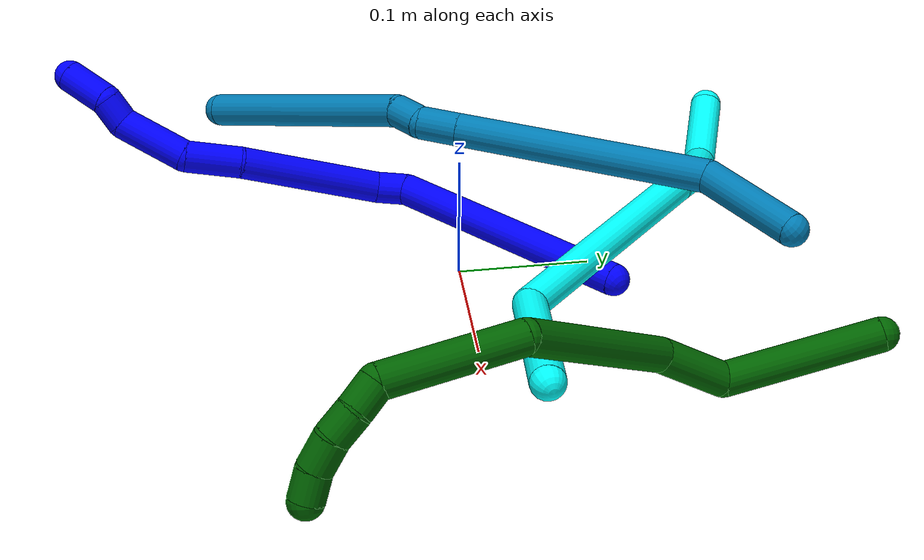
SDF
<sdf version="1.7">
 <world name="default">
  <model name="1">
   <static>0</static>
   <link name="1">
    <collision name="collision-cylinder-e_1_1_4">
     <pose>-0.025516 -0.025259 0.093465 0.26395 -0.257691 -0.034395</pose>
     <geometry><cylinder><radius>0.0125</radius><length>0.200248</length></cylinder></geometry>
     <surface>
      <friction><ode><mu>1.16</mu><mu2>1.16</mu2><slip1>0</slip1><slip2>0</slip2></ode></friction>
      <contact><ode><kp>1e+06</kp><kd>1</kd><max_vel>0</max_vel><min_depth>0.001</min_depth></ode></contact>
     </surface>
    </collision>
    <visual name="visual-cylinder-e_1_1_4">
     <pose>-0.025516 -0.025259 0.093465 0.26395 -0.257691 -0.034395</pose>
     <geometry><cylinder><radius>0.0125</radius><length>0.200248</length></cylinder></geometry>
     <material><ambient>0 0 1 1</ambient></material>
    </visual>
    <collision name="collision-cylinder-e_2_4_5">
     <pose>-0.056032 -0.058379 0.194829 0.782885 -0.421664 -0.176207</pose>
     <geometry><cylinder><radius>0.0125</radius><length>0.024427</length></cylinder></geometry>
     <surface>
      <friction><ode><mu>1.16</mu><mu2>1.16</mu2><slip1>0</slip1><slip2>0</slip2></ode></friction>
      <contact><ode><kp>1e+06</kp><kd>1</kd><max_vel>0</max_vel><min_depth>0.001</min_depth></ode></contact>
     </surface>
    </collision>
    <visual name="visual-cylinder-e_2_4_5">
     <pose>-0.056032 -0.058379 0.194829 0.782885 -0.421664 -0.176207</pose>
     <geometry><cylinder><radius>0.0125</radius><length>0.024427</length></cylinder></geometry>
     <material><ambient>0 0 1 1</ambient></material>
    </visual>
    <collision name="collision-cylinder-e_3_5_6">
     <pose>-0.067331 -0.11984 0.223192 1.2061 -0.109374 -0.075357</pose>
     <geometry><cylinder><radius>0.0125</radius><length>0.115439</length></cylinder></geometry>
     <surface>
      <friction><ode><mu>1.16</mu><mu2>1.16</mu2><slip1>0</slip1><slip2>0</slip2></ode></friction>
      <contact><ode><kp>1e+06</kp><kd>1</kd><max_vel>0</max_vel><min_depth>0.001</min_depth></ode></contact>
     </surface>
    </collision>
    <visual name="visual-cylinder-e_3_5_6">
     <pose>-0.067331 -0.11984 0.223192 1.2061 -0.109374 -0.075357</pose>
     <geometry><cylinder><radius>0.0125</radius><length>0.115439</length></cylinder></geometry>
     <material><ambient>0 0 1 1</ambient></material>
    </visual>
    <collision name="collision-cylinder-e_4_6_7">
     <pose>-0.079372 -0.191881 0.254097 1.05557 -0.26456 -0.15482</pose>
     <geometry><cylinder><radius>0.0125</radius><length>0.043909</length></cylinder></geometry>
     <surface>
      <friction><ode><mu>1.16</mu><mu2>1.16</mu2><slip1>0</slip1><slip2>0</slip2></ode></friction>
      <contact><ode><kp>1e+06</kp><kd>1</kd><max_vel>0</max_vel><min_depth>0.001</min_depth></ode></contact>
     </surface>
    </collision>
    <visual name="visual-cylinder-e_4_6_7">
     <pose>-0.079372 -0.191881 0.254097 1.05557 -0.26456 -0.15482</pose>
     <geometry><cylinder><radius>0.0125</radius><length>0.043909</length></cylinder></geometry>
     <material><ambient>0 0 1 1</ambient></material>
    </visual>
    <collision name="collision-cylinder-e_5_7_8">
     <pose>-0.086214 -0.226795 0.287335 0.625798 -0.039149 -0.012667</pose>
     <geometry><cylinder><radius>0.0125</radius><length>0.056297</length></cylinder></geometry>
     <surface>
      <friction><ode><mu>1.16</mu><mu2>1.16</mu2><slip1>0</slip1><slip2>0</slip2></ode></friction>
      <contact><ode><kp>1e+06</kp><kd>1</kd><max_vel>0</max_vel><min_depth>0.001</min_depth></ode></contact>
     </surface>
    </collision>
    <visual name="visual-cylinder-e_5_7_8">
     <pose>-0.086214 -0.226795 0.287335 0.625798 -0.039149 -0.012667</pose>
     <geometry><cylinder><radius>0.0125</radius><length>0.056297</length></cylinder></geometry>
     <material><ambient>0 0 1 1</ambient></material>
    </visual>
    <collision name="collision-cylinder-e_6_8_9">
     <pose>-0.082093 -0.249577 0.317727 0.692912 0.486672 0.178772</pose>
     <geometry><cylinder><radius>0.0125</radius><length>0.022338</length></cylinder></geometry>
     <surface>
      <friction><ode><mu>1.16</mu><mu2>1.16</mu2><slip1>0</slip1><slip2>0</slip2></ode></friction>
      <contact><ode><kp>1e+06</kp><kd>1</kd><max_vel>0</max_vel><min_depth>0.001</min_depth></ode></contact>
     </surface>
    </collision>
    <visual name="visual-cylinder-e_6_8_9">
     <pose>-0.082093 -0.249577 0.317727 0.692912 0.486672 0.178772</pose>
     <geometry><cylinder><radius>0.0125</radius><length>0.022338</length></cylinder></geometry>
     <material><ambient>0 0 1 1</ambient></material>
    </visual>
    <collision name="collision-cylinder-e_7_9_2">
     <pose>-0.077518 -0.263588 0.342317 0.425682 -0.034758 -0.007512</pose>
     <geometry><cylinder><radius>0.0125</radius><length>0.037343</length></cylinder></geometry>
     <surface>
      <friction><ode><mu>1.16</mu><mu2>1.16</mu2><slip1>0</slip1><slip2>0</slip2></ode></friction>
      <contact><ode><kp>1e+06</kp><kd>1</kd><max_vel>0</max_vel><min_depth>0.001</min_depth></ode></contact>
     </surface>
    </collision>
    <visual name="visual-cylinder-e_7_9_2">
     <pose>-0.077518 -0.263588 0.342317 0.425682 -0.034758 -0.007512</pose>
     <geometry><cylinder><radius>0.0125</radius><length>0.037343</length></cylinder></geometry>
     <material><ambient>0 0 1 1</ambient></material>
    </visual>
    <collision name="collision-sphere-2">
     <pose>-0.078167 -0.271294 0.359312 0 -0 0</pose>
     <geometry><sphere><radius>0.0125</radius></sphere></geometry>
     <surface>
      <friction><ode><mu>1.16</mu><mu2>1.16</mu2><slip1>0</slip1><slip2>0</slip2></ode></friction>
      <contact><ode><kp>1e+06</kp><kd>1</kd><max_vel>0</max_vel><min_depth>0.001</min_depth></ode></contact>
     </surface>
    </collision>
    <visual name="visual-sphere-2">
     <pose>-0.078167 -0.271294 0.359312 0 -0 0</pose>
     <geometry><sphere><radius>0.0125</radius></sphere></geometry>
     <material><ambient>0 0 1 1</ambient></material>
    </visual>
    <collision name="collision-sphere-9">
     <pose>-0.076869 -0.255883 0.325323 0 -0 0</pose>
     <geometry><sphere><radius>0.0125</radius></sphere></geometry>
     <surface>
      <friction><ode><mu>1.16</mu><mu2>1.16</mu2><slip1>0</slip1><slip2>0</slip2></ode></friction>
      <contact><ode><kp>1e+06</kp><kd>1</kd><max_vel>0</max_vel><min_depth>0.001</min_depth></ode></contact>
     </surface>
    </collision>
    <visual name="visual-sphere-9">
     <pose>-0.076869 -0.255883 0.325323 0 -0 0</pose>
     <geometry><sphere><radius>0.0125</radius></sphere></geometry>
     <material><ambient>0 0 1 1</ambient></material>
    </visual>
    <collision name="collision-sphere-4">
     <pose>-0.051033 -0.050519 0.18693 0 -0 0</pose>
     <geometry><sphere><radius>0.0125</radius></sphere></geometry>
     <surface>
      <friction><ode><mu>1.16</mu><mu2>1.16</mu2><slip1>0</slip1><slip2>0</slip2></ode></friction>
      <contact><ode><kp>1e+06</kp><kd>1</kd><max_vel>0</max_vel><min_depth>0.001</min_depth></ode></contact>
     </surface>
    </collision>
    <visual name="visual-sphere-4">
     <pose>-0.051033 -0.050519 0.18693 0 -0 0</pose>
     <geometry><sphere><radius>0.0125</radius></sphere></geometry>
     <material><ambient>0 0 1 1</ambient></material>
    </visual>
    <collision name="collision-sphere-1">
     <geometry><sphere><radius>0.0125</radius></sphere></geometry>
     <surface>
      <friction><ode><mu>1.16</mu><mu2>1.16</mu2><slip1>0</slip1><slip2>0</slip2></ode></friction>
      <contact><ode><kp>1e+06</kp><kd>1</kd><max_vel>0</max_vel><min_depth>0.001</min_depth></ode></contact>
     </surface>
    </collision>
    <visual name="visual-sphere-1">
     <geometry><sphere><radius>0.0125</radius></sphere></geometry>
     <material><ambient>0 0 1 1</ambient></material>
    </visual>
    <collision name="collision-sphere-8">
     <pose>-0.087316 -0.243271 0.310132 0 -0 0</pose>
     <geometry><sphere><radius>0.0125</radius></sphere></geometry>
     <surface>
      <friction><ode><mu>1.16</mu><mu2>1.16</mu2><slip1>0</slip1><slip2>0</slip2></ode></friction>
      <contact><ode><kp>1e+06</kp><kd>1</kd><max_vel>0</max_vel><min_depth>0.001</min_depth></ode></contact>
     </surface>
    </collision>
    <visual name="visual-sphere-8">
     <pose>-0.087316 -0.243271 0.310132 0 -0 0</pose>
     <geometry><sphere><radius>0.0125</radius></sphere></geometry>
     <material><ambient>0 0 1 1</ambient></material>
    </visual>
    <collision name="collision-sphere-5">
     <pose>-0.06103 -0.066239 0.202729 0 -0 0</pose>
     <geometry><sphere><radius>0.0125</radius></sphere></geometry>
     <surface>
      <friction><ode><mu>1.16</mu><mu2>1.16</mu2><slip1>0</slip1><slip2>0</slip2></ode></friction>
      <contact><ode><kp>1e+06</kp><kd>1</kd><max_vel>0</max_vel><min_depth>0.001</min_depth></ode></contact>
     </surface>
    </collision>
    <visual name="visual-sphere-5">
     <pose>-0.06103 -0.066239 0.202729 0 -0 0</pose>
     <geometry><sphere><radius>0.0125</radius></sphere></geometry>
     <material><ambient>0 0 1 1</ambient></material>
    </visual>
    <collision name="collision-sphere-6">
     <pose>-0.073631 -0.173441 0.243655 0 -0 0</pose>
     <geometry><sphere><radius>0.0125</radius></sphere></geometry>
     <surface>
      <friction><ode><mu>1.16</mu><mu2>1.16</mu2><slip1>0</slip1><slip2>0</slip2></ode></friction>
      <contact><ode><kp>1e+06</kp><kd>1</kd><max_vel>0</max_vel><min_depth>0.001</min_depth></ode></contact>
     </surface>
    </collision>
    <visual name="visual-sphere-6">
     <pose>-0.073631 -0.173441 0.243655 0 -0 0</pose>
     <geometry><sphere><radius>0.0125</radius></sphere></geometry>
     <material><ambient>0 0 1 1</ambient></material>
    </visual>
    <collision name="collision-sphere-7">
     <pose>-0.085113 -0.21032 0.264538 0 -0 0</pose>
     <geometry><sphere><radius>0.0125</radius></sphere></geometry>
     <surface>
      <friction><ode><mu>1.16</mu><mu2>1.16</mu2><slip1>0</slip1><slip2>0</slip2></ode></friction>
      <contact><ode><kp>1e+06</kp><kd>1</kd><max_vel>0</max_vel><min_depth>0.001</min_depth></ode></contact>
     </surface>
    </collision>
    <visual name="visual-sphere-7">
     <pose>-0.085113 -0.21032 0.264538 0 -0 0</pose>
     <geometry><sphere><radius>0.0125</radius></sphere></geometry>
     <material><ambient>0 0 1 1</ambient></material>
    </visual>
    <inertial>
     <pose>-0.054636 -0.113859 0.192908 0 -0 0</pose>
     <mass>0.5</mass>
     <inertia>
      <ixx>0.00078</ixx>
      <ixy>0</ixy>
      <ixz>0</ixz>
      <iyy>0.000674</iyy>
      <iyz>0</iyz>
      <izz>0.000534</izz>
     </inertia>
    </inertial>
   </link>
   <pose>0.042143 0.111805 0.012053 -1.28609 -1.10614 1.75072</pose>
  </model>
  <model name="3">
   <static>0</static>
   <link name="3">
    <collision name="collision-cylinder-e_1_1_4">
     <pose>-0.019521 0.005413 0.056515 -0.095485 -0.331172 0.015969</pose>
     <geometry><cylinder><radius>0.0125</radius><length>0.120072</length></cylinder></geometry>
     <surface>
      <friction><ode><mu>1.16</mu><mu2>1.16</mu2><slip1>0</slip1><slip2>0</slip2></ode></friction>
      <contact><ode><kp>1e+06</kp><kd>1</kd><max_vel>0</max_vel><min_depth>0.001</min_depth></ode></contact>
     </surface>
    </collision>
    <visual name="visual-cylinder-e_1_1_4">
     <pose>-0.019521 0.005413 0.056515 -0.095485 -0.331172 0.015969</pose>
     <geometry><cylinder><radius>0.0125</radius><length>0.120072</length></cylinder></geometry>
     <material><ambient>0.003922 1 0.996078 1</ambient></material>
    </visual>
    <collision name="collision-cylinder-e_2_4_5">
     <pose>-0.080715 0.078914 0.170347 -0.871089 -0.437916 0.206368</pose>
     <geometry><cylinder><radius>0.0125</radius><length>0.19655</length></cylinder></geometry>
     <surface>
      <friction><ode><mu>1.16</mu><mu2>1.16</mu2><slip1>0</slip1><slip2>0</slip2></ode></friction>
      <contact><ode><kp>1e+06</kp><kd>1</kd><max_vel>0</max_vel><min_depth>0.001</min_depth></ode></contact>
     </surface>
    </collision>
    <visual name="visual-cylinder-e_2_4_5">
     <pose>-0.080715 0.078914 0.170347 -0.871089 -0.437916 0.206368</pose>
     <geometry><cylinder><radius>0.0125</radius><length>0.19655</length></cylinder></geometry>
     <material><ambient>0.003922 1 0.996078 1</ambient></material>
    </visual>
    <collision name="collision-cylinder-e_3_5_6">
     <pose>-0.145326 0.157636 0.253656 -0.388298 -0.684856 0.139954</pose>
     <geometry><cylinder><radius>0.0125</radius><length>0.072519</length></cylinder></geometry>
     <surface>
      <friction><ode><mu>1.16</mu><mu2>1.16</mu2><slip1>0</slip1><slip2>0</slip2></ode></friction>
      <contact><ode><kp>1e+06</kp><kd>1</kd><max_vel>0</max_vel><min_depth>0.001</min_depth></ode></contact>
     </surface>
    </collision>
    <visual name="visual-cylinder-e_3_5_6">
     <pose>-0.145326 0.157636 0.253656 -0.388298 -0.684856 0.139954</pose>
     <geometry><cylinder><radius>0.0125</radius><length>0.072519</length></cylinder></geometry>
     <material><ambient>0.003922 1 0.996078 1</ambient></material>
    </visual>
    <collision name="collision-cylinder-e_4_6_7">
     <pose>-0.180811 0.173369 0.297982 -0.271329 -0.582999 0.081869</pose>
     <geometry><cylinder><radius>0.0125</radius><length>0.045588</length></cylinder></geometry>
     <surface>
      <friction><ode><mu>1.16</mu><mu2>1.16</mu2><slip1>0</slip1><slip2>0</slip2></ode></friction>
      <contact><ode><kp>1e+06</kp><kd>1</kd><max_vel>0</max_vel><min_depth>0.001</min_depth></ode></contact>
     </surface>
    </collision>
    <visual name="visual-cylinder-e_4_6_7">
     <pose>-0.180811 0.173369 0.297982 -0.271329 -0.582999 0.081869</pose>
     <geometry><cylinder><radius>0.0125</radius><length>0.045588</length></cylinder></geometry>
     <material><ambient>0.003922 1 0.996078 1</ambient></material>
    </visual>
    <collision name="collision-cylinder-e_5_7_2">
     <pose>-0.193212 0.194954 0.34448 -0.529539 0.004545 -0.001232</pose>
     <geometry><cylinder><radius>0.0125</radius><length>0.06527</length></cylinder></geometry>
     <surface>
      <friction><ode><mu>1.16</mu><mu2>1.16</mu2><slip1>0</slip1><slip2>0</slip2></ode></friction>
      <contact><ode><kp>1e+06</kp><kd>1</kd><max_vel>0</max_vel><min_depth>0.001</min_depth></ode></contact>
     </surface>
    </collision>
    <visual name="visual-cylinder-e_5_7_2">
     <pose>-0.193212 0.194954 0.34448 -0.529539 0.004545 -0.001232</pose>
     <geometry><cylinder><radius>0.0125</radius><length>0.06527</length></cylinder></geometry>
     <material><ambient>0.003922 1 0.996078 1</ambient></material>
    </visual>
    <collision name="collision-sphere-2">
     <pose>-0.193063 0.211439 0.372645 0 -0 0</pose>
     <geometry><sphere><radius>0.0125</radius></sphere></geometry>
     <surface>
      <friction><ode><mu>1.16</mu><mu2>1.16</mu2><slip1>0</slip1><slip2>0</slip2></ode></friction>
      <contact><ode><kp>1e+06</kp><kd>1</kd><max_vel>0</max_vel><min_depth>0.001</min_depth></ode></contact>
     </surface>
    </collision>
    <visual name="visual-sphere-2">
     <pose>-0.193063 0.211439 0.372645 0 -0 0</pose>
     <geometry><sphere><radius>0.0125</radius></sphere></geometry>
     <material><ambient>0.003922 1 0.996078 1</ambient></material>
    </visual>
    <collision name="collision-sphere-7">
     <pose>-0.19336 0.178469 0.316315 0 -0 0</pose>
     <geometry><sphere><radius>0.0125</radius></sphere></geometry>
     <surface>
      <friction><ode><mu>1.16</mu><mu2>1.16</mu2><slip1>0</slip1><slip2>0</slip2></ode></friction>
      <contact><ode><kp>1e+06</kp><kd>1</kd><max_vel>0</max_vel><min_depth>0.001</min_depth></ode></contact>
     </surface>
    </collision>
    <visual name="visual-sphere-7">
     <pose>-0.19336 0.178469 0.316315 0 -0 0</pose>
     <geometry><sphere><radius>0.0125</radius></sphere></geometry>
     <material><ambient>0.003922 1 0.996078 1</ambient></material>
    </visual>
    <collision name="collision-sphere-6">
     <pose>-0.168262 0.168269 0.279649 0 -0 0</pose>
     <geometry><sphere><radius>0.0125</radius></sphere></geometry>
     <surface>
      <friction><ode><mu>1.16</mu><mu2>1.16</mu2><slip1>0</slip1><slip2>0</slip2></ode></friction>
      <contact><ode><kp>1e+06</kp><kd>1</kd><max_vel>0</max_vel><min_depth>0.001</min_depth></ode></contact>
     </surface>
    </collision>
    <visual name="visual-sphere-6">
     <pose>-0.168262 0.168269 0.279649 0 -0 0</pose>
     <geometry><sphere><radius>0.0125</radius></sphere></geometry>
     <material><ambient>0.003922 1 0.996078 1</ambient></material>
    </visual>
    <collision name="collision-sphere-5">
     <pose>-0.122389 0.147003 0.227663 0 -0 0</pose>
     <geometry><sphere><radius>0.0125</radius></sphere></geometry>
     <surface>
      <friction><ode><mu>1.16</mu><mu2>1.16</mu2><slip1>0</slip1><slip2>0</slip2></ode></friction>
      <contact><ode><kp>1e+06</kp><kd>1</kd><max_vel>0</max_vel><min_depth>0.001</min_depth></ode></contact>
     </surface>
    </collision>
    <visual name="visual-sphere-5">
     <pose>-0.122389 0.147003 0.227663 0 -0 0</pose>
     <geometry><sphere><radius>0.0125</radius></sphere></geometry>
     <material><ambient>0.003922 1 0.996078 1</ambient></material>
    </visual>
    <collision name="collision-sphere-1">
     <geometry><sphere><radius>0.0125</radius></sphere></geometry>
     <surface>
      <friction><ode><mu>1.16</mu><mu2>1.16</mu2><slip1>0</slip1><slip2>0</slip2></ode></friction>
      <contact><ode><kp>1e+06</kp><kd>1</kd><max_vel>0</max_vel><min_depth>0.001</min_depth></ode></contact>
     </surface>
    </collision>
    <visual name="visual-sphere-1">
     <geometry><sphere><radius>0.0125</radius></sphere></geometry>
     <material><ambient>0.003922 1 0.996078 1</ambient></material>
    </visual>
    <collision name="collision-sphere-4">
     <pose>-0.039042 0.010826 0.113031 0 -0 0</pose>
     <geometry><sphere><radius>0.0125</radius></sphere></geometry>
     <surface>
      <friction><ode><mu>1.16</mu><mu2>1.16</mu2><slip1>0</slip1><slip2>0</slip2></ode></friction>
      <contact><ode><kp>1e+06</kp><kd>1</kd><max_vel>0</max_vel><min_depth>0.001</min_depth></ode></contact>
     </surface>
    </collision>
    <visual name="visual-sphere-4">
     <pose>-0.039042 0.010826 0.113031 0 -0 0</pose>
     <geometry><sphere><radius>0.0125</radius></sphere></geometry>
     <material><ambient>0.003922 1 0.996078 1</ambient></material>
    </visual>
    <inertial>
     <pose>-0.099203 0.096441 0.189463 0 -0 0</pose>
     <mass>0.5</mass>
     <inertia>
      <ixx>0.000879</ixx>
      <ixy>0</ixy>
      <ixz>0</ixz>
      <iyy>0.000801</iyy>
      <iyz>0</iyz>
      <izz>-0.000106</izz>
     </inertia>
    </inertial>
   </link>
   <pose>0.247465 0.022883 0.090828 1.52263 -1.07782 -1.35956</pose>
  </model>
  <model name="6">
   <static>0</static>
   <link name="6">
    <collision name="collision-cylinder-e_1_1_4">
     <pose>0.011571 -0.055033 0.011023 1.37312 0.203318 0.166822</pose>
     <geometry><cylinder><radius>0.0125</radius><length>0.114614</length></cylinder></geometry>
     <surface>
      <friction><ode><mu>1.16</mu><mu2>1.16</mu2><slip1>0</slip1><slip2>0</slip2></ode></friction>
      <contact><ode><kp>1e+06</kp><kd>1</kd><max_vel>0</max_vel><min_depth>0.001</min_depth></ode></contact>
     </surface>
    </collision>
    <visual name="visual-cylinder-e_1_1_4">
     <pose>0.011571 -0.055033 0.011023 1.37312 0.203318 0.166822</pose>
     <geometry><cylinder><radius>0.0125</radius><length>0.114614</length></cylinder></geometry>
     <material><ambient>0 0.392157 0.003922 1</ambient></material>
    </visual>
    <collision name="collision-cylinder-e_2_4_5">
     <pose>0.016259 -0.134117 0.010731 2.01052 -0.253431 -0.396186</pose>
     <geometry><cylinder><radius>0.0125</radius><length>0.054911</length></cylinder></geometry>
     <surface>
      <friction><ode><mu>1.16</mu><mu2>1.16</mu2><slip1>0</slip1><slip2>0</slip2></ode></friction>
      <contact><ode><kp>1e+06</kp><kd>1</kd><max_vel>0</max_vel><min_depth>0.001</min_depth></ode></contact>
     </surface>
    </collision>
    <visual name="visual-cylinder-e_2_4_5">
     <pose>0.016259 -0.134117 0.010731 2.01052 -0.253431 -0.396186</pose>
     <geometry><cylinder><radius>0.0125</radius><length>0.054911</length></cylinder></geometry>
     <material><ambient>0 0.392157 0.003922 1</ambient></material>
    </visual>
    <collision name="collision-cylinder-e_3_5_6">
     <pose>-0.031429 -0.214231 -0.013438 1.79619 -0.617007 -0.76104</pose>
     <geometry><cylinder><radius>0.0125</radius><length>0.141045</length></cylinder></geometry>
     <surface>
      <friction><ode><mu>1.16</mu><mu2>1.16</mu2><slip1>0</slip1><slip2>0</slip2></ode></friction>
      <contact><ode><kp>1e+06</kp><kd>1</kd><max_vel>0</max_vel><min_depth>0.001</min_depth></ode></contact>
     </surface>
    </collision>
    <visual name="visual-cylinder-e_3_5_6">
     <pose>-0.031429 -0.214231 -0.013438 1.79619 -0.617007 -0.76104</pose>
     <geometry><cylinder><radius>0.0125</radius><length>0.141045</length></cylinder></geometry>
     <material><ambient>0 0.392157 0.003922 1</ambient></material>
    </visual>
    <collision name="collision-cylinder-e_4_6_7">
     <pose>-0.077697 -0.320078 -0.017257 1.39124 -0.107567 -0.089826</pose>
     <geometry><cylinder><radius>0.0125</radius><length>0.101778</length></cylinder></geometry>
     <surface>
      <friction><ode><mu>1.16</mu><mu2>1.16</mu2><slip1>0</slip1><slip2>0</slip2></ode></friction>
      <contact><ode><kp>1e+06</kp><kd>1</kd><max_vel>0</max_vel><min_depth>0.001</min_depth></ode></contact>
     </surface>
    </collision>
    <visual name="visual-cylinder-e_4_6_7">
     <pose>-0.077697 -0.320078 -0.017257 1.39124 -0.107567 -0.089826</pose>
     <geometry><cylinder><radius>0.0125</radius><length>0.101778</length></cylinder></geometry>
     <material><ambient>0 0.392157 0.003922 1</ambient></material>
    </visual>
    <collision name="collision-cylinder-e_5_7_8">
     <pose>-0.083337 -0.377295 -0.000167 0.74556 -0.016159 -0.006319</pose>
     <geometry><cylinder><radius>0.0125</radius><length>0.021926</length></cylinder></geometry>
     <surface>
      <friction><ode><mu>1.16</mu><mu2>1.16</mu2><slip1>0</slip1><slip2>0</slip2></ode></friction>
      <contact><ode><kp>1e+06</kp><kd>1</kd><max_vel>0</max_vel><min_depth>0.001</min_depth></ode></contact>
     </surface>
    </collision>
    <visual name="visual-cylinder-e_5_7_8">
     <pose>-0.083337 -0.377295 -0.000167 0.74556 -0.016159 -0.006319</pose>
     <geometry><cylinder><radius>0.0125</radius><length>0.021926</length></cylinder></geometry>
     <material><ambient>0 0.392157 0.003922 1</ambient></material>
    </visual>
    <collision name="collision-cylinder-e_6_8_9">
     <pose>-0.081582 -0.392104 0.015605 0.762462 0.179169 0.07198</pose>
     <geometry><cylinder><radius>0.0125</radius><length>0.021694</length></cylinder></geometry>
     <surface>
      <friction><ode><mu>1.16</mu><mu2>1.16</mu2><slip1>0</slip1><slip2>0</slip2></ode></friction>
      <contact><ode><kp>1e+06</kp><kd>1</kd><max_vel>0</max_vel><min_depth>0.001</min_depth></ode></contact>
     </surface>
    </collision>
    <visual name="visual-cylinder-e_6_8_9">
     <pose>-0.081582 -0.392104 0.015605 0.762462 0.179169 0.07198</pose>
     <geometry><cylinder><radius>0.0125</radius><length>0.021694</length></cylinder></geometry>
     <material><ambient>0 0.392157 0.003922 1</ambient></material>
    </visual>
    <collision name="collision-cylinder-e_7_9_10">
     <pose>-0.076393 -0.405376 0.032797 0.556985 0.283851 0.081663</pose>
     <geometry><cylinder><radius>0.0125</radius><length>0.023251</length></cylinder></geometry>
     <surface>
      <friction><ode><mu>1.16</mu><mu2>1.16</mu2><slip1>0</slip1><slip2>0</slip2></ode></friction>
      <contact><ode><kp>1e+06</kp><kd>1</kd><max_vel>0</max_vel><min_depth>0.001</min_depth></ode></contact>
     </surface>
    </collision>
    <visual name="visual-cylinder-e_7_9_10">
     <pose>-0.076393 -0.405376 0.032797 0.556985 0.283851 0.081663</pose>
     <geometry><cylinder><radius>0.0125</radius><length>0.023251</length></cylinder></geometry>
     <material><ambient>0 0.392157 0.003922 1</ambient></material>
    </visual>
    <collision name="collision-cylinder-e_8_10_2">
     <pose>-0.070854 -0.414401 0.051913 0.313465 0.221511 0.035145</pose>
     <geometry><cylinder><radius>0.0125</radius><length>0.02078</length></cylinder></geometry>
     <surface>
      <friction><ode><mu>1.16</mu><mu2>1.16</mu2><slip1>0</slip1><slip2>0</slip2></ode></friction>
      <contact><ode><kp>1e+06</kp><kd>1</kd><max_vel>0</max_vel><min_depth>0.001</min_depth></ode></contact>
     </surface>
    </collision>
    <visual name="visual-cylinder-e_8_10_2">
     <pose>-0.070854 -0.414401 0.051913 0.313465 0.221511 0.035145</pose>
     <geometry><cylinder><radius>0.0125</radius><length>0.02078</length></cylinder></geometry>
     <material><ambient>0 0.392157 0.003922 1</ambient></material>
    </visual>
    <collision name="collision-sphere-2">
     <pose>-0.068571 -0.417526 0.061555 0 -0 0</pose>
     <geometry><sphere><radius>0.0125</radius></sphere></geometry>
     <surface>
      <friction><ode><mu>1.16</mu><mu2>1.16</mu2><slip1>0</slip1><slip2>0</slip2></ode></friction>
      <contact><ode><kp>1e+06</kp><kd>1</kd><max_vel>0</max_vel><min_depth>0.001</min_depth></ode></contact>
     </surface>
    </collision>
    <visual name="visual-sphere-2">
     <pose>-0.068571 -0.417526 0.061555 0 -0 0</pose>
     <geometry><sphere><radius>0.0125</radius></sphere></geometry>
     <material><ambient>0 0.392157 0.003922 1</ambient></material>
    </visual>
    <collision name="collision-sphere-10">
     <pose>-0.073137 -0.411275 0.042271 0 -0 0</pose>
     <geometry><sphere><radius>0.0125</radius></sphere></geometry>
     <surface>
      <friction><ode><mu>1.16</mu><mu2>1.16</mu2><slip1>0</slip1><slip2>0</slip2></ode></friction>
      <contact><ode><kp>1e+06</kp><kd>1</kd><max_vel>0</max_vel><min_depth>0.001</min_depth></ode></contact>
     </surface>
    </collision>
    <visual name="visual-sphere-10">
     <pose>-0.073137 -0.411275 0.042271 0 -0 0</pose>
     <geometry><sphere><radius>0.0125</radius></sphere></geometry>
     <material><ambient>0 0.392157 0.003922 1</ambient></material>
    </visual>
    <collision name="collision-sphere-9">
     <pose>-0.079648 -0.399476 0.023323 0 -0 0</pose>
     <geometry><sphere><radius>0.0125</radius></sphere></geometry>
     <surface>
      <friction><ode><mu>1.16</mu><mu2>1.16</mu2><slip1>0</slip1><slip2>0</slip2></ode></friction>
      <contact><ode><kp>1e+06</kp><kd>1</kd><max_vel>0</max_vel><min_depth>0.001</min_depth></ode></contact>
     </surface>
    </collision>
    <visual name="visual-sphere-9">
     <pose>-0.079648 -0.399476 0.023323 0 -0 0</pose>
     <geometry><sphere><radius>0.0125</radius></sphere></geometry>
     <material><ambient>0 0.392157 0.003922 1</ambient></material>
    </visual>
    <collision name="collision-sphere-4">
     <pose>0.023143 -0.110067 0.022045 0 -0 0</pose>
     <geometry><sphere><radius>0.0125</radius></sphere></geometry>
     <surface>
      <friction><ode><mu>1.16</mu><mu2>1.16</mu2><slip1>0</slip1><slip2>0</slip2></ode></friction>
      <contact><ode><kp>1e+06</kp><kd>1</kd><max_vel>0</max_vel><min_depth>0.001</min_depth></ode></contact>
     </surface>
    </collision>
    <visual name="visual-sphere-4">
     <pose>0.023143 -0.110067 0.022045 0 -0 0</pose>
     <geometry><sphere><radius>0.0125</radius></sphere></geometry>
     <material><ambient>0 0.392157 0.003922 1</ambient></material>
    </visual>
    <collision name="collision-sphere-1">
     <geometry><sphere><radius>0.0125</radius></sphere></geometry>
     <surface>
      <friction><ode><mu>1.16</mu><mu2>1.16</mu2><slip1>0</slip1><slip2>0</slip2></ode></friction>
      <contact><ode><kp>1e+06</kp><kd>1</kd><max_vel>0</max_vel><min_depth>0.001</min_depth></ode></contact>
     </surface>
    </collision>
    <visual name="visual-sphere-1">
     <geometry><sphere><radius>0.0125</radius></sphere></geometry>
     <material><ambient>0 0.392157 0.003922 1</ambient></material>
    </visual>
    <collision name="collision-sphere-8">
     <pose>-0.083515 -0.384732 0.007887 0 -0 0</pose>
     <geometry><sphere><radius>0.0125</radius></sphere></geometry>
     <surface>
      <friction><ode><mu>1.16</mu><mu2>1.16</mu2><slip1>0</slip1><slip2>0</slip2></ode></friction>
      <contact><ode><kp>1e+06</kp><kd>1</kd><max_vel>0</max_vel><min_depth>0.001</min_depth></ode></contact>
     </surface>
    </collision>
    <visual name="visual-sphere-8">
     <pose>-0.083515 -0.384732 0.007887 0 -0 0</pose>
     <geometry><sphere><radius>0.0125</radius></sphere></geometry>
     <material><ambient>0 0.392157 0.003922 1</ambient></material>
    </visual>
    <collision name="collision-sphere-5">
     <pose>0.009375 -0.158167 -0.000583 0 -0 0</pose>
     <geometry><sphere><radius>0.0125</radius></sphere></geometry>
     <surface>
      <friction><ode><mu>1.16</mu><mu2>1.16</mu2><slip1>0</slip1><slip2>0</slip2></ode></friction>
      <contact><ode><kp>1e+06</kp><kd>1</kd><max_vel>0</max_vel><min_depth>0.001</min_depth></ode></contact>
     </surface>
    </collision>
    <visual name="visual-sphere-5">
     <pose>0.009375 -0.158167 -0.000583 0 -0 0</pose>
     <geometry><sphere><radius>0.0125</radius></sphere></geometry>
     <material><ambient>0 0.392157 0.003922 1</ambient></material>
    </visual>
    <collision name="collision-sphere-6">
     <pose>-0.072233 -0.270296 -0.026293 0 -0 0</pose>
     <geometry><sphere><radius>0.0125</radius></sphere></geometry>
     <surface>
      <friction><ode><mu>1.16</mu><mu2>1.16</mu2><slip1>0</slip1><slip2>0</slip2></ode></friction>
      <contact><ode><kp>1e+06</kp><kd>1</kd><max_vel>0</max_vel><min_depth>0.001</min_depth></ode></contact>
     </surface>
    </collision>
    <visual name="visual-sphere-6">
     <pose>-0.072233 -0.270296 -0.026293 0 -0 0</pose>
     <geometry><sphere><radius>0.0125</radius></sphere></geometry>
     <material><ambient>0 0.392157 0.003922 1</ambient></material>
    </visual>
    <collision name="collision-sphere-7">
     <pose>-0.08316 -0.369859 -0.00822 0 -0 0</pose>
     <geometry><sphere><radius>0.0125</radius></sphere></geometry>
     <surface>
      <friction><ode><mu>1.16</mu><mu2>1.16</mu2><slip1>0</slip1><slip2>0</slip2></ode></friction>
      <contact><ode><kp>1e+06</kp><kd>1</kd><max_vel>0</max_vel><min_depth>0.001</min_depth></ode></contact>
     </surface>
    </collision>
    <visual name="visual-sphere-7">
     <pose>-0.08316 -0.369859 -0.00822 0 -0 0</pose>
     <geometry><sphere><radius>0.0125</radius></sphere></geometry>
     <material><ambient>0 0.392157 0.003922 1</ambient></material>
    </visual>
    <inertial>
     <pose>-0.033935 -0.222562 0.000754 0 -0 0</pose>
     <mass>0.5</mass>
     <inertia>
      <ixx>0.000246</ixx>
      <ixy>0</ixy>
      <ixz>0</ixz>
      <iyy>-5.8e-05</iyy>
      <iyz>0</iyz>
      <izz>0.000552</izz>
     </inertia>
    </inertial>
   </link>
   <pose>0.180687 0.27113 0.051213 -3.08334 0.620824 -3.02872</pose>
  </model>
  <model name="9">
   <static>0</static>
   <link name="9">
    <collision name="collision-cylinder-e_1_1_4">
     <pose>-0.014987 -0.03145 -0.020593 2.15054 -0.379371 -0.682619</pose>
     <geometry><cylinder><radius>0.0125</radius><length>0.080939</length></cylinder></geometry>
     <surface>
      <friction><ode><mu>1.16</mu><mu2>1.16</mu2><slip1>0</slip1><slip2>0</slip2></ode></friction>
      <contact><ode><kp>1e+06</kp><kd>1</kd><max_vel>0</max_vel><min_depth>0.001</min_depth></ode></contact>
     </surface>
    </collision>
    <visual name="visual-cylinder-e_1_1_4">
     <pose>-0.014987 -0.03145 -0.020593 2.15054 -0.379371 -0.682619</pose>
     <geometry><cylinder><radius>0.0125</radius><length>0.080939</length></cylinder></geometry>
     <material><ambient>0 0.490196 0.709804 1</ambient></material>
    </visual>
    <collision name="collision-cylinder-e_2_4_5">
     <pose>-0.092921 -0.095705 -0.104259 2.66197 -0.72469 -1.99585</pose>
     <geometry><cylinder><radius>0.0125</radius><length>0.18991</length></cylinder></geometry>
     <surface>
      <friction><ode><mu>1.16</mu><mu2>1.16</mu2><slip1>0</slip1><slip2>0</slip2></ode></friction>
      <contact><ode><kp>1e+06</kp><kd>1</kd><max_vel>0</max_vel><min_depth>0.001</min_depth></ode></contact>
     </surface>
    </collision>
    <visual name="visual-cylinder-e_2_4_5">
     <pose>-0.092921 -0.095705 -0.104259 2.66197 -0.72469 -1.99585</pose>
     <geometry><cylinder><radius>0.0125</radius><length>0.18991</length></cylinder></geometry>
     <material><ambient>0 0.490196 0.709804 1</ambient></material>
    </visual>
    <collision name="collision-cylinder-e_3_5_6">
     <pose>-0.165863 -0.133752 -0.177374 2.66062 -0.722947 -1.99079</pose>
     <geometry><cylinder><radius>0.0125</radius><length>0.030217</length></cylinder></geometry>
     <surface>
      <friction><ode><mu>1.16</mu><mu2>1.16</mu2><slip1>0</slip1><slip2>0</slip2></ode></friction>
      <contact><ode><kp>1e+06</kp><kd>1</kd><max_vel>0</max_vel><min_depth>0.001</min_depth></ode></contact>
     </surface>
    </collision>
    <visual name="visual-cylinder-e_3_5_6">
     <pose>-0.165863 -0.133752 -0.177374 2.66062 -0.722947 -1.99079</pose>
     <geometry><cylinder><radius>0.0125</radius><length>0.030217</length></cylinder></geometry>
     <material><ambient>0 0.490196 0.709804 1</ambient></material>
    </visual>
    <collision name="collision-cylinder-e_4_6_7">
     <pose>-0.181714 -0.148173 -0.193747 2.17441 -0.483578 -0.878027</pose>
     <geometry><cylinder><radius>0.0125</radius><length>0.025188</length></cylinder></geometry>
     <surface>
      <friction><ode><mu>1.16</mu><mu2>1.16</mu2><slip1>0</slip1><slip2>0</slip2></ode></friction>
      <contact><ode><kp>1e+06</kp><kd>1</kd><max_vel>0</max_vel><min_depth>0.001</min_depth></ode></contact>
     </surface>
    </collision>
    <visual name="visual-cylinder-e_4_6_7">
     <pose>-0.181714 -0.148173 -0.193747 2.17441 -0.483578 -0.878027</pose>
     <geometry><cylinder><radius>0.0125</radius><length>0.025188</length></cylinder></geometry>
     <material><ambient>0 0.490196 0.709804 1</ambient></material>
    </visual>
    <collision name="collision-cylinder-e_5_7_2">
     <pose>-0.253687 -0.203046 -0.233054 2.19596 -0.864977 -1.46838</pose>
     <geometry><cylinder><radius>0.0125</radius><length>0.173745</length></cylinder></geometry>
     <surface>
      <friction><ode><mu>1.16</mu><mu2>1.16</mu2><slip1>0</slip1><slip2>0</slip2></ode></friction>
      <contact><ode><kp>1e+06</kp><kd>1</kd><max_vel>0</max_vel><min_depth>0.001</min_depth></ode></contact>
     </surface>
    </collision>
    <visual name="visual-cylinder-e_5_7_2">
     <pose>-0.253687 -0.203046 -0.233054 2.19596 -0.864977 -1.46838</pose>
     <geometry><cylinder><radius>0.0125</radius><length>0.173745</length></cylinder></geometry>
     <material><ambient>0 0.490196 0.709804 1</ambient></material>
    </visual>
    <collision name="collision-sphere-2">
     <pose>-0.319804 -0.248739 -0.266032 0 -0 0</pose>
     <geometry><sphere><radius>0.0125</radius></sphere></geometry>
     <surface>
      <friction><ode><mu>1.16</mu><mu2>1.16</mu2><slip1>0</slip1><slip2>0</slip2></ode></friction>
      <contact><ode><kp>1e+06</kp><kd>1</kd><max_vel>0</max_vel><min_depth>0.001</min_depth></ode></contact>
     </surface>
    </collision>
    <visual name="visual-sphere-2">
     <pose>-0.319804 -0.248739 -0.266032 0 -0 0</pose>
     <geometry><sphere><radius>0.0125</radius></sphere></geometry>
     <material><ambient>0 0.490196 0.709804 1</ambient></material>
    </visual>
    <collision name="collision-sphere-7">
     <pose>-0.18757 -0.157353 -0.200076 0 -0 0</pose>
     <geometry><sphere><radius>0.0125</radius></sphere></geometry>
     <surface>
      <friction><ode><mu>1.16</mu><mu2>1.16</mu2><slip1>0</slip1><slip2>0</slip2></ode></friction>
      <contact><ode><kp>1e+06</kp><kd>1</kd><max_vel>0</max_vel><min_depth>0.001</min_depth></ode></contact>
     </surface>
    </collision>
    <visual name="visual-sphere-7">
     <pose>-0.18757 -0.157353 -0.200076 0 -0 0</pose>
     <geometry><sphere><radius>0.0125</radius></sphere></geometry>
     <material><ambient>0 0.490196 0.709804 1</ambient></material>
    </visual>
    <collision name="collision-sphere-6">
     <pose>-0.175858 -0.138994 -0.187418 0 -0 0</pose>
     <geometry><sphere><radius>0.0125</radius></sphere></geometry>
     <surface>
      <friction><ode><mu>1.16</mu><mu2>1.16</mu2><slip1>0</slip1><slip2>0</slip2></ode></friction>
      <contact><ode><kp>1e+06</kp><kd>1</kd><max_vel>0</max_vel><min_depth>0.001</min_depth></ode></contact>
     </surface>
    </collision>
    <visual name="visual-sphere-6">
     <pose>-0.175858 -0.138994 -0.187418 0 -0 0</pose>
     <geometry><sphere><radius>0.0125</radius></sphere></geometry>
     <material><ambient>0 0.490196 0.709804 1</ambient></material>
    </visual>
    <collision name="collision-sphere-5">
     <pose>-0.155867 -0.128511 -0.167331 0 -0 0</pose>
     <geometry><sphere><radius>0.0125</radius></sphere></geometry>
     <surface>
      <friction><ode><mu>1.16</mu><mu2>1.16</mu2><slip1>0</slip1><slip2>0</slip2></ode></friction>
      <contact><ode><kp>1e+06</kp><kd>1</kd><max_vel>0</max_vel><min_depth>0.001</min_depth></ode></contact>
     </surface>
    </collision>
    <visual name="visual-sphere-5">
     <pose>-0.155867 -0.128511 -0.167331 0 -0 0</pose>
     <geometry><sphere><radius>0.0125</radius></sphere></geometry>
     <material><ambient>0 0.490196 0.709804 1</ambient></material>
    </visual>
    <collision name="collision-sphere-1">
     <geometry><sphere><radius>0.0125</radius></sphere></geometry>
     <surface>
      <friction><ode><mu>1.16</mu><mu2>1.16</mu2><slip1>0</slip1><slip2>0</slip2></ode></friction>
      <contact><ode><kp>1e+06</kp><kd>1</kd><max_vel>0</max_vel><min_depth>0.001</min_depth></ode></contact>
     </surface>
    </collision>
    <visual name="visual-sphere-1">
     <geometry><sphere><radius>0.0125</radius></sphere></geometry>
     <material><ambient>0 0.490196 0.709804 1</ambient></material>
    </visual>
    <collision name="collision-sphere-4">
     <pose>-0.029975 -0.062899 -0.041187 0 -0 0</pose>
     <geometry><sphere><radius>0.0125</radius></sphere></geometry>
     <surface>
      <friction><ode><mu>1.16</mu><mu2>1.16</mu2><slip1>0</slip1><slip2>0</slip2></ode></friction>
      <contact><ode><kp>1e+06</kp><kd>1</kd><max_vel>0</max_vel><min_depth>0.001</min_depth></ode></contact>
     </surface>
    </collision>
    <visual name="visual-sphere-4">
     <pose>-0.029975 -0.062899 -0.041187 0 -0 0</pose>
     <geometry><sphere><radius>0.0125</radius></sphere></geometry>
     <material><ambient>0 0.490196 0.709804 1</ambient></material>
    </visual>
    <inertial>
     <pose>-0.145051 -0.127546 -0.144397 0 -0 0</pose>
     <mass>0.5</mass>
     <inertia>
      <ixx>-0.000852</ixx>
      <ixy>0</ixy>
      <ixz>0</ixz>
      <iyy>-0.000122</iyy>
      <iyz>0</iyz>
      <izz>0.001194</izz>
     </inertia>
    </inertial>
   </link>
   <pose>0.123308 0.217423 0.105283 2.99488 -0.727506 1.57353</pose>
  </model>
 </world>
</sdf>
